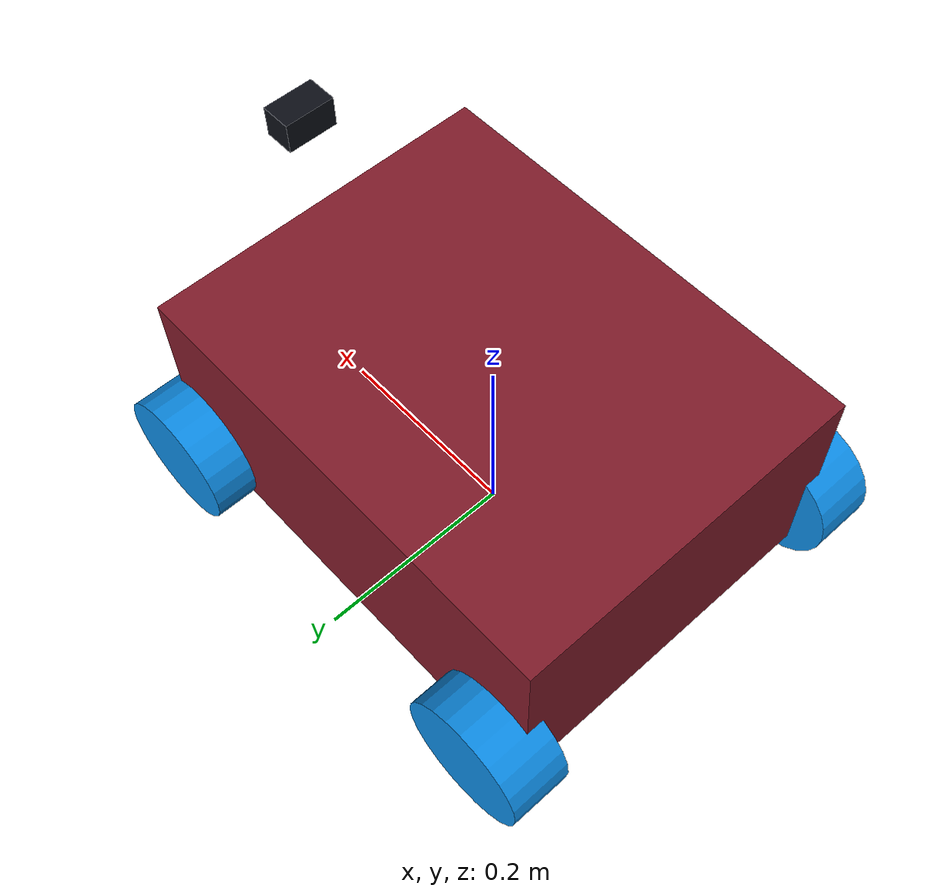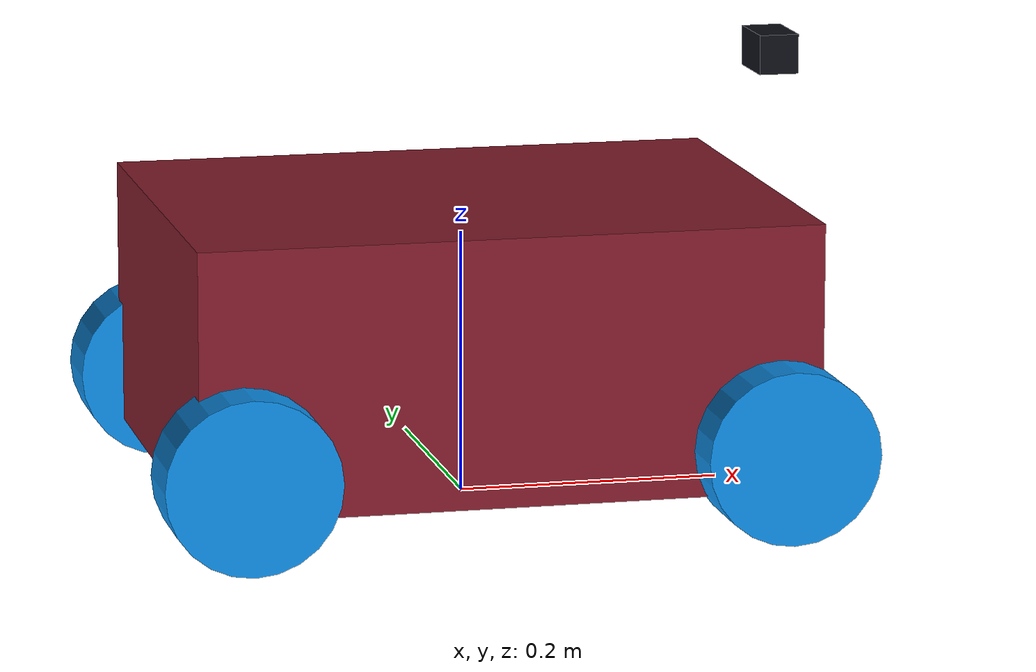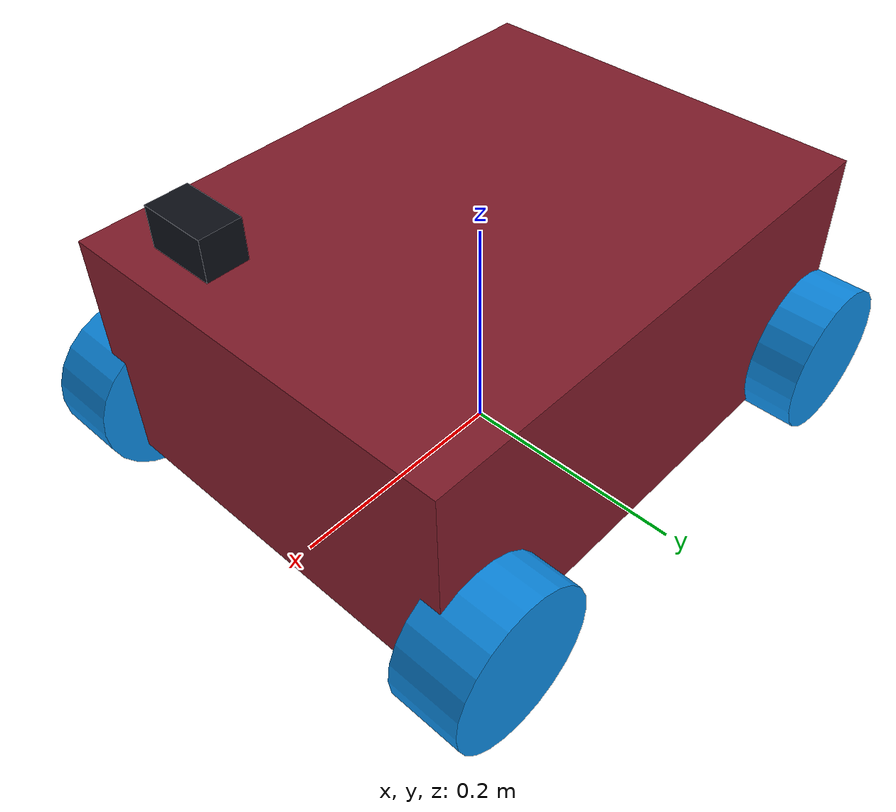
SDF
<?xml version="1.0"?>
<sdf version="1.9">
  <model name="phoenix">
    <pose>0 0 0 0 0 0</pose>
    <self_collide>false</self_collide>
    <allow_auto_disable>false</allow_auto_disable>

    <link name="base_footprint">
      <inertial><mass>5.4</mass><inertia><ixx>0.07471</ixx><iyy>0.11530</iyy><izz>0.15402</izz></inertia></inertial>
    </link>
    <link name="base_link">
      <pose>0 0 0.13 0 0 0</pose>
      <inertial><mass>5.4</mass><inertia><ixx>0.07471</ixx><iyy>0.11530</iyy><izz>0.15402</izz></inertia></inertial>
      <collision name="collision"><pose>0 0 0.02 0 0 0</pose><geometry><box><size>0.42 0.32 0.16</size></box></geometry></collision>
      <visual name="visual"><geometry><box><size>0.465 0.355 0.2</size></box></geometry><material><ambient>0.51 0.11 0.17 1</ambient><diffuse>0.51 0.11 0.17 1</diffuse></material></visual>
    </link>
    <joint name="base_footprint_joint" type="fixed"><parent>base_footprint</parent><child>base_link</child></joint>

    <link name="front_left_wheel">
      <pose relative_to="base_link">0.2 0.19 -0.065 0 0 0</pose>
      <inertial>
        <mass>0.2</mass>
        <inertia><ixx>0.00025</ixx><iyy>0.00042</iyy><izz>0.00025</izz></inertia>
      </inertial>
      <collision name="collision"><pose>0 0 0 1.5708 0 0</pose><geometry><cylinder><radius>0.065</radius><length>0.06</length></cylinder></geometry><surface><friction><ode><mu>1.0</mu><mu2>0.05</mu2><fdir1>1 0 0</fdir1><slip1>0.0001</slip1><slip2>0.05</slip2></ode></friction></surface></collision>
      <visual name="visual"><pose>0 0 0 1.5708 0 0</pose><geometry><cylinder><radius>0.065</radius><length>0.06</length></cylinder></geometry><material><ambient>0.05 0.55 0.90 1</ambient><diffuse>0.05 0.55 0.90 1</diffuse></material></visual>
    </link>
    <link name="rear_left_wheel">
      <pose relative_to="base_link">-0.2 0.19 -0.065 0 0 0</pose>
      <inertial>
        <mass>0.2</mass>
        <inertia><ixx>0.00025</ixx><iyy>0.00042</iyy><izz>0.00025</izz></inertia>
      </inertial>
      <collision name="collision"><pose>0 0 0 1.5708 0 0</pose><geometry><cylinder><radius>0.065</radius><length>0.06</length></cylinder></geometry><surface><friction><ode><mu>1.0</mu><mu2>0.05</mu2><fdir1>1 0 0</fdir1><slip1>0.0001</slip1><slip2>0.05</slip2></ode></friction></surface></collision>
      <visual name="visual"><pose>0 0 0 1.5708 0 0</pose><geometry><cylinder><radius>0.065</radius><length>0.06</length></cylinder></geometry><material><ambient>0.05 0.55 0.90 1</ambient><diffuse>0.05 0.55 0.90 1</diffuse></material></visual>
    </link>
    <link name="front_right_wheel">
      <pose relative_to="base_link">0.2 -0.19 -0.065 0 0 0</pose>
      <inertial>
        <mass>0.2</mass>
        <inertia><ixx>0.00025</ixx><iyy>0.00042</iyy><izz>0.00025</izz></inertia>
      </inertial>
      <collision name="collision"><pose>0 0 0 1.5708 0 0</pose><geometry><cylinder><radius>0.065</radius><length>0.06</length></cylinder></geometry><surface><friction><ode><mu>1.0</mu><mu2>0.05</mu2><fdir1>1 0 0</fdir1><slip1>0.0001</slip1><slip2>0.05</slip2></ode></friction></surface></collision>
      <visual name="visual"><pose>0 0 0 1.5708 0 0</pose><geometry><cylinder><radius>0.065</radius><length>0.06</length></cylinder></geometry><material><ambient>0.05 0.55 0.90 1</ambient><diffuse>0.05 0.55 0.90 1</diffuse></material></visual>
    </link>
    <link name="rear_right_wheel">
      <pose relative_to="base_link">-0.2 -0.19 -0.065 0 0 0</pose>
      <inertial>
        <mass>0.2</mass>
        <inertia><ixx>0.00025</ixx><iyy>0.00042</iyy><izz>0.00025</izz></inertia>
      </inertial>
      <collision name="collision"><pose>0 0 0 1.5708 0 0</pose><geometry><cylinder><radius>0.065</radius><length>0.06</length></cylinder></geometry><surface><friction><ode><mu>1.0</mu><mu2>0.05</mu2><fdir1>1 0 0</fdir1><slip1>0.0001</slip1><slip2>0.05</slip2></ode></friction></surface></collision>
      <visual name="visual"><pose>0 0 0 1.5708 0 0</pose><geometry><cylinder><radius>0.065</radius><length>0.06</length></cylinder></geometry><material><ambient>0.05 0.55 0.90 1</ambient><diffuse>0.05 0.55 0.90 1</diffuse></material></visual>
    </link>

    <joint name="front_left_wheel_joint" type="revolute"><parent>base_link</parent><child>front_left_wheel</child><axis><xyz>0 1 0</xyz><limit><lower>-1e16</lower><upper>1e16</upper></limit><dynamics><damping>0.01</damping><friction>0.01</friction></dynamics></axis></joint>
    <joint name="rear_left_wheel_joint" type="revolute"><parent>base_link</parent><child>rear_left_wheel</child><axis><xyz>0 1 0</xyz><limit><lower>-1e16</lower><upper>1e16</upper></limit><dynamics><damping>0.01</damping><friction>0.01</friction></dynamics></axis></joint>
    <joint name="front_right_wheel_joint" type="revolute"><parent>base_link</parent><child>front_right_wheel</child><axis><xyz>0 1 0</xyz><limit><lower>-1e16</lower><upper>1e16</upper></limit><dynamics><damping>0.01</damping><friction>0.01</friction></dynamics></axis></joint>
    <joint name="rear_right_wheel_joint" type="revolute"><parent>base_link</parent><child>rear_right_wheel</child><axis><xyz>0 1 0</xyz><limit><lower>-1e16</lower><upper>1e16</upper></limit><dynamics><damping>0.01</damping><friction>0.01</friction></dynamics></axis></joint>

    <link name="camera_link">
      <pose relative_to="base_link">0.24 0 0.20 0 0 0</pose>
      <visual name="visual">
        <geometry><box><size>0.03 0.05 0.03</size></box></geometry>
        <material><ambient>0.05 0.06 0.09 1</ambient><diffuse>0.05 0.06 0.09 1</diffuse></material>
      </visual>
      <sensor name="camera_sensor" type="camera">
        <always_on>true</always_on>
        <update_rate>30</update_rate>
        <visualize>true</visualize>
        <topic>/camera/image_raw</topic>
        <gz_frame_id>camera_link</gz_frame_id>
        <camera>
          <horizontal_fov>1.309</horizontal_fov>
          <image>
            <width>640</width>
            <height>480</height>
            <format>R8G8B8</format>
          </image>
          <clip>
            <near>0.05</near>
            <far>50.0</far>
          </clip>
        </camera>
      </sensor>
    </link>
    <joint name="camera_joint" type="fixed"><parent>base_link</parent><child>camera_link</child></joint>

    <link name="lidar_link">
      <pose relative_to="base_link">0.1 0 0.3 0 0 0</pose>
      <sensor name="lidar_sensor" type="gpu_lidar">
        <always_on>true</always_on>
        <visualize>true</visualize>
        <update_rate>10</update_rate>
        <topic>/scan</topic>
        <gz_frame_id>lidar_link</gz_frame_id>
        <ray>
          <scan><horizontal><samples>360</samples><resolution>1</resolution><min_angle>0</min_angle><max_angle>6.283185</max_angle></horizontal></scan>
          <range><min>0.05</min><max>10.0</max><resolution>0.01</resolution></range>
        </ray>
      </sensor>
    </link>
    <joint name="lidar_joint" type="fixed"><parent>base_link</parent><child>lidar_link</child></joint>

    <plugin filename="gz-sim-diff-drive-system" name="gz::sim::systems::DiffDrive">
      <left_joint>front_left_wheel_joint</left_joint>
      <left_joint>rear_left_wheel_joint</left_joint>
      <right_joint>front_right_wheel_joint</right_joint>
      <right_joint>rear_right_wheel_joint</right_joint>
      <wheel_separation>0.38</wheel_separation>
      <wheel_radius>0.065</wheel_radius>
      <odom_publish_frequency>30</odom_publish_frequency>
      <odom_topic>/odom</odom_topic>
      <topic>/cmd_vel</topic>
      <frame_id>odom</frame_id>
      <child_frame_id>base_footprint</child_frame_id>
    </plugin>
  </model>
</sdf>
